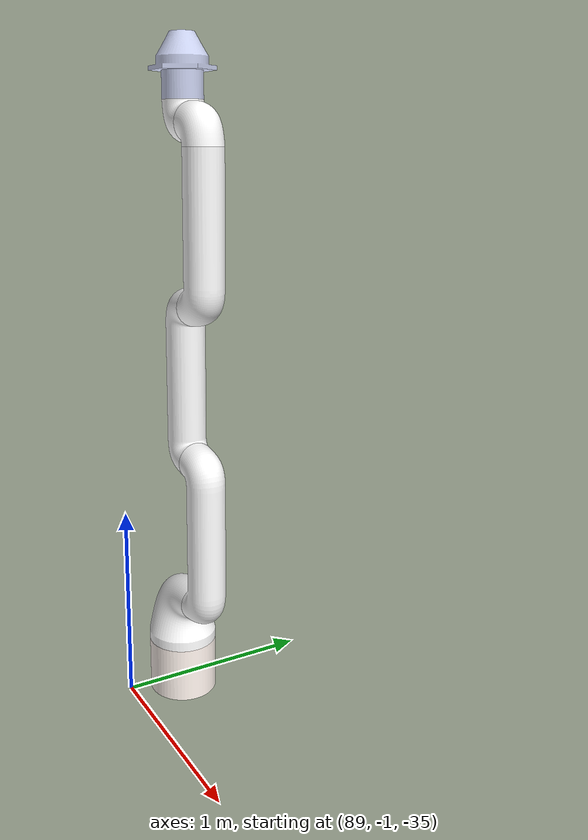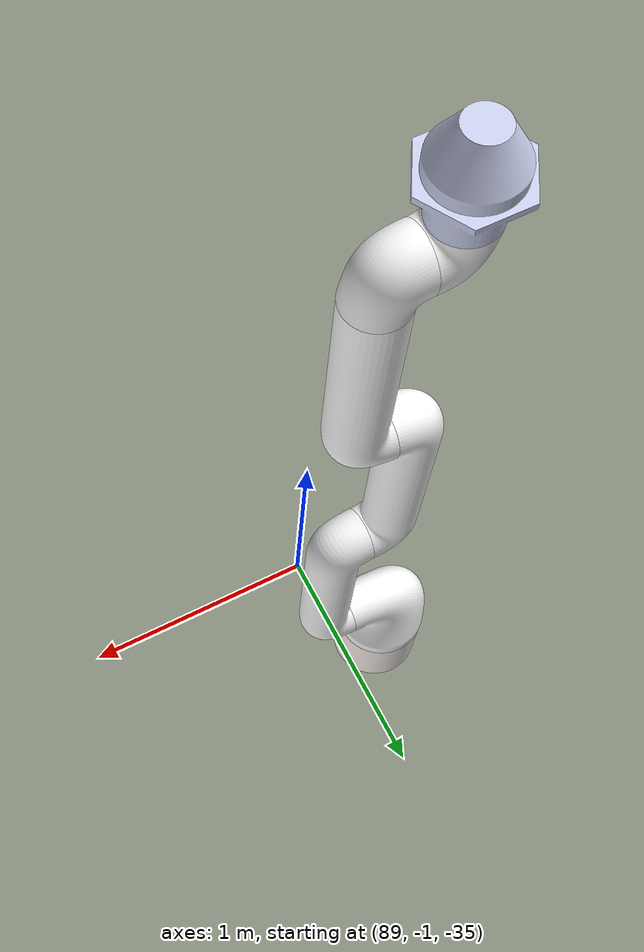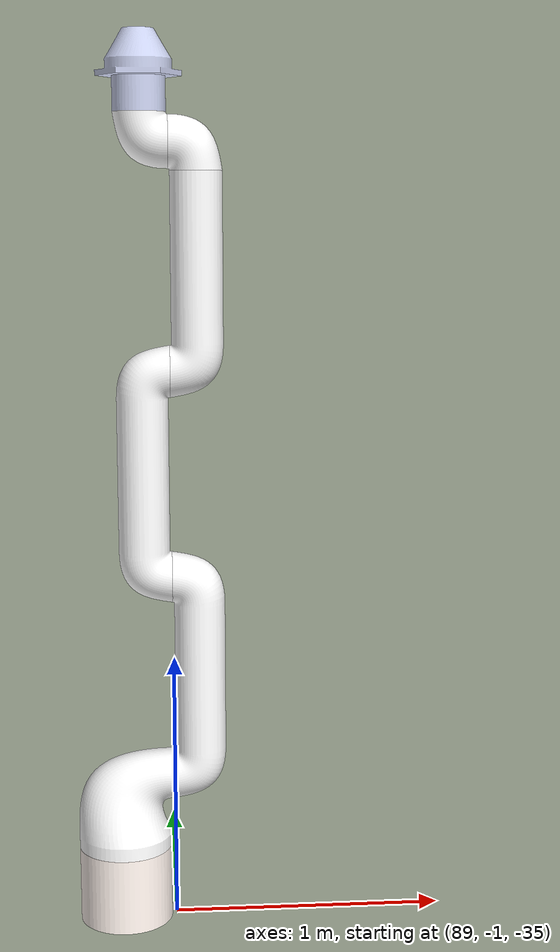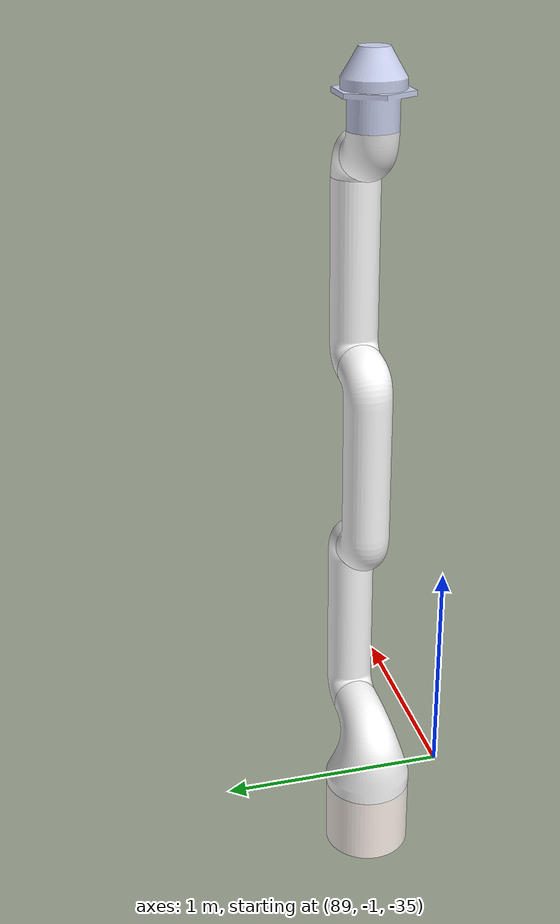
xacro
<?xml version="1.0"?>
<robot xmlns:xacro="http://www.ros.org/wiki/xacro" name="nemo1">
    <xacro:arg name="initial_positions_file" default="initial_positions.yaml" />

    <!-- Import nemo1 urdf file -->
    <xacro:include filename="$(find nemo1_description)/urdf/nemo1.urdf" />

    <!-- Import control_xacro -->
    <xacro:include filename="nemo1.ros2_control.xacro" />

    <xacro:nemo1_ros2_control name="GazeboSystem"
	    initial_positions_file="$(arg initial_positions_file)"/>

    <!-- ros gz plugin -->
    <gazebo>
	    <plugin filename="gz_ros2_control-system"
		    name="gz_ros2_control::GazeboSimROS2ControlPlugin">
		    <ros>
			    <namespace>nemo</namespace>
		    </ros>
		    <parameters>$(find nemo1_moveit)/config/ros2_controllers.yaml</parameters>
	    </plugin>
    </gazebo>

</robot>

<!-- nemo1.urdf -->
<robot name="nemo1">
  <!-- adding fixed frame for gz sim -->
  <link name="world"/>

<!-- Virtual Joint to fix robot to ISS -->
  <joint name="fixedFrameToWorld" type="fixed">
    <parent link="world"/>
    <child link="nemo_base_link"/>
    <origin rpy="0.0 0.0 0.0" xyz="88.8 -0.6 -35.2"/>
  </joint>

  <link
    name="nemo_base_link">
    <inertial>
      <origin
        xyz="-4.0251E-17 5.7935E-34 0.24074"
        rpy="0 0 0" />
      <mass
        value="39.819" />
      <inertia
        ixx="0.95808"
        ixy="9.1833E-33"
        ixz="1.4543E-18"
        iyy="0.95808"
        iyz="-2.0879E-32"
        izz="0.84991" />
    </inertial>
    <visual>
      <origin
        xyz="0 0 0"
        rpy="0 0 0" />
      <geometry>
        <mesh
          filename="package://nemo1_description/meshes/base_link.STL" />
      </geometry>
      <material
        name="">
        <color
          rgba="1 0.95686 0.92941 1" />
      </material>
    </visual>
    <collision>
      <origin
        xyz="0 0 0"
        rpy="0 0 0" />
      <geometry>
        <mesh
          filename="package://nemo1_description/meshes/base_link.STL" />
      </geometry>
    </collision>
  </link>
  <link
    name="link_1">
    <inertial>
      <origin
        xyz="0.010338 -0.0004773 0.18391"
        rpy="0 0 0" />
      <mass
        value="49.442" />
      <inertia
        ixx="0.72708"
        ixy="0.0024865"
        ixz="-0.12127"
        iyy="0.89497"
        iyz="-0.00065038"
        izz="0.71565" />
    </inertial>
    <visual>
      <origin
        xyz="0 0 0"
        rpy="0 0 0" />
      <geometry>
        <mesh
          filename="package://nemo1_description/meshes/link_1.STL" />
      </geometry>
      <material
        name="">
        <color
          rgba="1 1 1 1" />
      </material>
    </visual>
    <collision>
      <origin
        xyz="0 0 0"
        rpy="0 0 0" />
      <geometry>
        <mesh
          filename="package://nemo1_description/meshes/link_1.STL" />
      </geometry>
    </collision>
  </link>
  <joint
    name="J1"
    type="revolute">
    <origin
      xyz="0 0 0.305"
      rpy="0 0 0" />
    <parent
      link="nemo_base_link" />
    <child
      link="link_1" />
    <axis
      xyz="0 0 1" />
    <limit
      lower="-3.14"
      upper="3.14"
      effort="2000"
      velocity="0.8" />
  </joint>
  <link
    name="link_2">
    <inertial>
      <origin
        xyz="-0.405 -7.1675E-05 0.1354"
        rpy="0 0 0" />
      <mass
        value="23.562" />
      <inertia
        ixx="0.13291"
        ixy="-7.5138E-07"
        ixz="2.3007E-07"
        iyy="3.415"
        iyz="5.699E-05"
        izz="3.4052" />
    </inertial>
    <visual>
      <origin
        xyz="0 0 0"
        rpy="0 0 0" />
      <geometry>
        <mesh
          filename="package://nemo1_description/meshes/link_2.STL" />
      </geometry>
      <material
        name="">
        <color
          rgba="1 1 1 1" />
      </material>
    </visual>
    <collision>
      <origin
        xyz="0 0 0"
        rpy="0 0 0" />
      <geometry>
        <mesh
          filename="package://nemo1_description/meshes/link_2.STL" />
      </geometry>
    </collision>
  </link>
  <joint
    name="J2"
    type="revolute">
    <origin
      xyz="0.15 0 0.3"
      rpy="0 1.5707963267949 0" />
    <parent
      link="link_1" />
    <child
      link="link_2" />
    <axis
      xyz="0 0 -1" />
    <limit
      lower="-3.14"
      upper="3.14"
      effort="2000"
      velocity="0.8" />
  </joint>
  <link
    name="link_3">
    <inertial>
      <origin
        xyz="-0.41186 -7.289E-05 -0.086846"
        rpy="0 0 0" />
      <mass
        value="23.169" />
      <inertia
        ixx="0.12961"
        ixy="1.2349E-05"
        ixz="0.013812"
        iyy="3.3462"
        iyz="-5.4544E-05"
        izz="3.3396" />
    </inertial>
    <visual>
      <origin
        xyz="0 0 0"
        rpy="0 0 0" />
      <geometry>
        <mesh
          filename="package://nemo1_description/meshes/link_3.STL" />
      </geometry>
      <material
        name="">
        <color
          rgba="1 1 1 1" />
      </material>
    </visual>
    <collision>
      <origin
        xyz="0 0 0"
        rpy="0 0 0" />
      <geometry>
        <mesh
          filename="package://nemo1_description/meshes/link_3.STL" />
      </geometry>
    </collision>
  </link>
  <joint
    name="J3"
    type="revolute">
    <origin
      xyz="-0.81 0 0.05"
      rpy="0 0 0" />
    <parent
      link="link_2" />
    <child
      link="link_3" />
    <axis
      xyz="0 0 -1" />
    <limit
      lower="-3.14"
      upper="3.14"
      effort="2000"
      velocity="0.8" />
  </joint>
  <link
    name="link_4">
    <inertial>
      <origin
        xyz="-0.20303 5.5903E-05 0.093029"
        rpy="0 0 0" />
      <mass
        value="15.206" />
      <inertia
        ixx="0.087692"
        ixy="-0.00022912"
        ixz="0.046098"
        iyy="1.3816"
        iyz="-2.2268E-05"
        izz="1.3789" />
    </inertial>
    <visual>
      <origin
        xyz="0 0 0"
        rpy="0 0 0" />
      <geometry>
        <mesh
          filename="package://nemo1_description/meshes/link_4.STL" />
      </geometry>
      <material
        name="">
        <color
          rgba="1 1 1 1" />
      </material>
    </visual>
    <collision>
      <origin
        xyz="0 0 0"
        rpy="0 0 0" />
      <geometry>
        <mesh
          filename="package://nemo1_description/meshes/link_4.STL" />
      </geometry>
    </collision>
  </link>
  <joint
    name="J4"
    type="revolute">
    <origin
      xyz="-0.81 0 0"
      rpy="0 0 0" />
    <parent
      link="link_3" />
    <child
      link="link_4" />
    <axis
      xyz="0 0 1" />
    <limit
      lower="-3.14"
      upper="3.14"
      effort="2000"
      velocity="0.8" />
  </joint>
  <link
    name="link_5">
    <inertial>
      <origin
        xyz="0.023474 7.7273E-05 0.13435"
        rpy="0 0 0" />
      <mass
        value="11.232" />
      <inertia
        ixx="0.058934"
        ixy="7.6333E-05"
        ixz="-0.0089365"
        iyy="0.06121"
        iyz="-3.0975E-05"
        izz="0.056584" />
    </inertial>
    <visual>
      <origin
        xyz="0 0 0"
        rpy="0 0 0" />
      <geometry>
        <mesh
          filename="package://nemo1_description/meshes/link_5.STL" />
      </geometry>
      <material
        name="">
        <color
          rgba="1 1 1 1" />
      </material>
    </visual>
    <collision>
      <origin
        xyz="0 0 0"
        rpy="0 0 0" />
      <geometry>
        <mesh
          filename="package://nemo1_description/meshes/link_5.STL" />
      </geometry>
    </collision>
  </link>
  <joint
    name="J5"
    type="revolute">
    <origin
      xyz="-0.707 0 0.107"
      rpy="3.14159265358979 1.5707963267949 0" />
    <parent
      link="link_4" />
    <child
      link="link_5" />
    <axis
      xyz="0 0 -1" />
    <limit
      lower="-3.14"
      upper="3.14"
      effort="2000"
      velocity="0.8" />
  </joint>
  <link
    name="link_6">
    <inertial>
      <origin
        xyz="-0.023472 8.0222E-05 0.08448"
        rpy="0 0 0" />
      <mass
        value="10.839" />
      <inertia
        ixx="0.053489"
        ixy="-3.1793E-05"
        ixz="0.0081853"
        iyy="0.057908"
        iyz="-7.3889E-05"
        izz="0.058602" />
    </inertial>
    <visual>
      <origin
        xyz="0 0 0"
        rpy="0 0 0" />
      <geometry>
        <mesh
          filename="package://nemo1_description/meshes/link_6.STL" />
      </geometry>
      <material
        name="">
        <color
          rgba="1 1 1 1" />
      </material>
    </visual>
    <collision>
      <origin
        xyz="0 0 0"
        rpy="0 0 0" />
      <geometry>
        <mesh
          filename="package://nemo1_description/meshes/link_6.STL" />
      </geometry>
    </collision>
  </link>
  <joint
    name="J6"
    type="revolute">
    <origin
      xyz="0.105 0 0.157"
      rpy="0 1.5708 0" />
    <parent
      link="link_5" />
    <child
      link="link_6" />
    <axis
      xyz="0 0 1" />
    <limit
      lower="-3.14"
      upper="3.14"
      effort="2000"
      velocity="0.8" />
  </joint>
  <link
    name="EE">
    <inertial>
      <origin
        xyz="-3.8804E-08 -1.3523E-08 0.14436"
        rpy="0 0 0" />
      <mass
        value="10.348" />
      <inertia
        ixx="0.090992"
        ixy="-1.3474E-08"
        ixz="5.0453E-08"
        iyy="0.090992"
        iyz="1.7583E-08"
        izz="0.066002" />
    </inertial>
    <visual>
      <origin
        xyz="0 0 0"
        rpy="0 0 0" />
      <geometry>
        <mesh
          filename="package://nemo1_description/meshes/EE.STL" />
      </geometry>
      <material
        name="">
        <color
          rgba="0.79216 0.81961 0.93333 1" />
      </material>
    </visual>
    <collision>
      <origin
        xyz="0 0 0"
        rpy="0 0 0" />
      <geometry>
        <mesh
          filename="package://nemo1_description/meshes/EE.STL" />
      </geometry>
    </collision>
  </link>
  <joint
    name="J7"
    type="revolute">
    <origin
      xyz="-0.107 0 0.105"
      rpy="3.14159265358979 1.5707963267949 0" />
    <parent
      link="link_6" />
    <child
      link="EE" />
    <axis
      xyz="0 0 1" />
    <limit
      lower="-3.14"
      upper="3.14"
      effort="2000"
      velocity="0.8" />
  </joint>
</robot>
